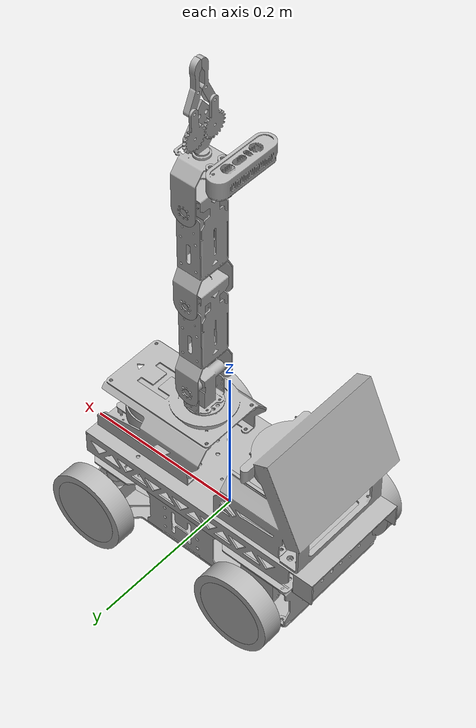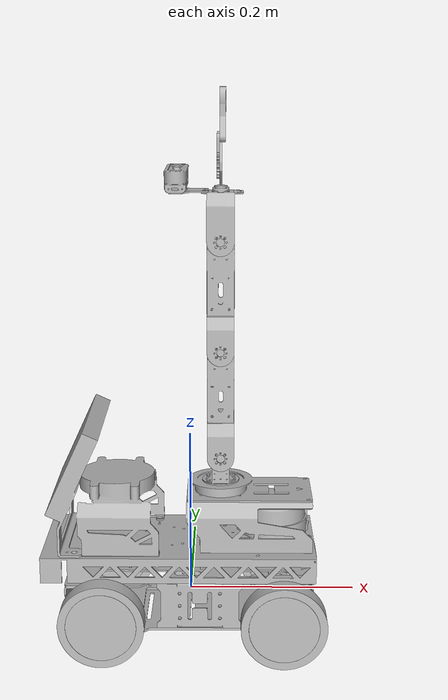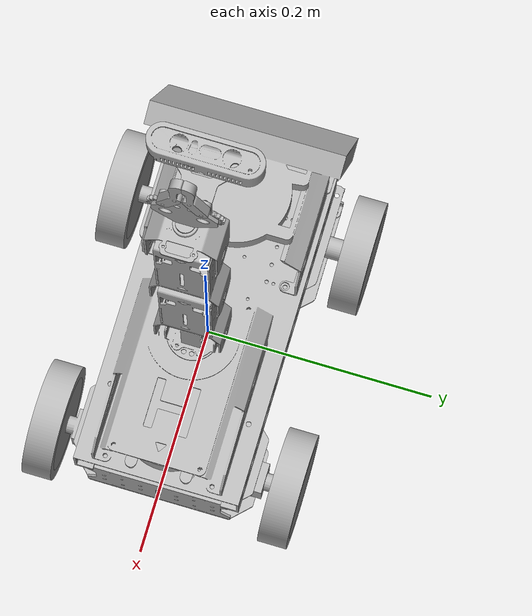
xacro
<?xml version="1.0"?>
<robot xmlns:xacro="http://www.ros.org/wiki/xacro" name="assembly_simulation">
    <xacro:arg name="initial_positions_file" default="initial_positions.yaml" />

    <!-- Import assembly_simulation urdf file -->
    <xacro:include filename="$(find jetrover_description)/urdf/assembly_simulation.xacro" />

    <!-- Import control_xacro -->
    <xacro:include filename="assembly_simulation.ros2_control.xacro" />

    <xacro:assembly_simulation_ros2_control name="FakeSystem" initial_positions_file="$(arg initial_positions_file)"/>

</robot>

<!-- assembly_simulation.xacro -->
<robot name="assembly_simulation" xmlns:xacro="http://www.ros.org/wiki/xacro">

  <xacro:include filename="$(find jetrover_description)/urdf/materials.xacro" />
  <xacro:include filename="$(find jetrover_description)/urdf/assembly_simulation.ros2control" />
  <xacro:include filename="$(find jetrover_description)/urdf/assembly_simulation.gazebo" />

  <link name="base_link">
    <inertial>
      <origin xyz="-0.0067982582159906695 0.0012157481048895304 -0.020578960201385596"
        rpy="0.0 0.0 0.0" />
      <mass value="0.4109600119604506" />
      <inertia ixx="0.0010913317770443174" iyy="0.0035379802831414023" izz="0.004549932585128713"
        ixy="4.787883371736895e-05" iyz="-1.0852253114523492e-05" ixz="0.00011255987326628367" />
    </inertial>
    <visual name="base_link_visual">
      <origin xyz="0.0 0.0 0.0" rpy="0.0 0.0 0.0" />
      <geometry>
        <mesh filename="file://$(find jetrover_description)/meshes/base_link.stl"
          scale="0.001 0.001 0.001" />
      </geometry>
      <material name="silver" />
    </visual>
    <collision name="base_link_collision">
      <origin xyz="0.0 0.0 0.0" rpy="0.0 0.0 0.0" />
      <geometry>
        <mesh filename="file://$(find jetrover_description)/meshes/base_link.stl"
          scale="0.001 0.001 0.001" />
      </geometry>
    </collision>
  </link>
  <link name="front_left_sterring_link">
    <inertial>
      <origin xyz="-0.004046761892184225 -0.006035026500165257 -0.019363389865389154"
        rpy="0.0 -0.0 0.0" />
      <mass value="0.07976552705950153" />
      <inertia ixx="1.8978782625800545e-05" iyy="2.183901609982791e-05" izz="2.5596290041883865e-05"
        ixy="3.5006816117792022e-06" iyz="-1.4605534916832075e-06" ixz="3.17939436578847e-06" />
    </inertial>
    <visual name="front_left_sterring_link_visual">
      <origin xyz="-0.11123217 0.06368303 -0.02126492445928225"
        rpy="3.141592653589793 -0.0 -4.61955986574744e-33" />
      <geometry>
        <mesh filename="file://$(find jetrover_description)/meshes/front_left_sterring_link.stl"
          scale="0.001 0.001 0.001" />
      </geometry>
      <material name="silver" />
    </visual>
    <collision name="front_left_sterring_link_collision">
      <origin xyz="-0.11123217 0.06368303 -0.02126492445928225"
        rpy="3.141592653589793 -0.0 -4.61955986574744e-33" />
      <geometry>
        <mesh filename="file://$(find jetrover_description)/meshes/front_left_sterring_link.stl"
          scale="0.001 0.001 0.001" />
      </geometry>
    </collision>
  </link>
  <link name="rear_right_wheel_link">
    <inertial>
      <origin xyz="-4.8838706945275594e-09 -4.295349098626389e-09 0.01280000084509128"
        rpy="0.0 -0.0 0.0" />
      <mass value="1.0742550415244152" />
      <inertia ixx="0.0005156466721912382" iyy="0.000515646672191266" izz="0.0009139560470469363"
        ixy="8.673617379884035e-19" iyz="0.0" ixz="0.0" />
    </inertial>
    <visual name="rear_right_wheel_link_visual">
      <origin xyz="-4.8838706945275594e-09 -4.295349107508173e-09 0.006800000845091283"
        rpy="-1.5707963267948966 1.9745049295806095e-49 0.0" />
      <geometry>
        <mesh filename="file://$(find jetrover_description)/meshes/rear_right_wheel_link.stl"
          scale="0.001 0.001 0.001" />
      </geometry>
      <material name="silver" />
    </visual>
    <collision name="rear_right_wheel_link_collision">
      <origin xyz="-4.8838706945275594e-09 -4.295349107508173e-09 0.006800000845091283"
        rpy="-1.5707963267948966 1.9745049295806095e-49 0.0" />
      <geometry>
        <mesh filename="file://$(find jetrover_description)/meshes/rear_right_wheel_link.stl"
          scale="0.001 0.001 0.001" />
      </geometry>
    </collision>
  </link>
  <link name="rear_right_wheel_tire">
    <inertial>
      <origin xyz="-4.8838706945275594e-09 -4.295349116389957e-09 -0.012799999154908726"
        rpy="0.0 -0.0 0.0" />
      <mass value="0.06316889720600809" />
      <inertia ixx="7.066062313314226e-05" iyy="7.066062313314616e-05" izz="0.00013442151818746702"
        ixy="5.421010862427522e-20" iyz="-5.421010862427522e-20" ixz="0.0" />
    </inertial>
    <visual name="rear_right_wheel_tire_visual">
      <origin xyz="-4.8838706945275594e-09 -4.295349107508173e-09 -0.018799999154908723"
        rpy="-1.5707963267948966 1.9745049295806095e-49 0.0" />
      <geometry>
        <mesh filename="file://$(find jetrover_description)/meshes/rear_right_wheel_tire.stl"
          scale="0.001 0.001 0.001" />
      </geometry>
      <material name="silver" />
    </visual>
    <collision name="rear_right_wheel_tire_collision">
      <origin xyz="-4.8838706945275594e-09 -4.295349107508173e-09 -0.018799999154908723"
        rpy="-1.5707963267948966 1.9745049295806095e-49 0.0" />
      <geometry>
        <mesh filename="file://$(find jetrover_description)/meshes/rear_right_wheel_tire.stl"
          scale="0.001 0.001 0.001" />
      </geometry>
    </collision>
  </link>
  <link name="back_shell_green_link">
    <inertial>
      <origin xyz="-0.10672400926251399 0.06191583961052936 -0.047361790831857854"
        rpy="0.0 -0.0 0.0" />
      <mass value="1.490908993099616" />
      <inertia ixx="0.004670014598120796" iyy="0.01266510603378274" izz="0.014386663467940293"
        ixy="1.2607305340495994e-05" iyz="-4.945158285442334e-06" ixz="0.0010742484529362006" />
    </inertial>
    <visual name="back_shell_green_link_visual">
      <origin xyz="-0.1253717600000026 0.06196329000000034 -0.05344999394079745"
        rpy="-3.141592653589793 4.7331654313260666e-30 0.0" />
      <geometry>
        <mesh filename="file://$(find jetrover_description)/meshes/back_shell_green_link.stl"
          scale="0.001 0.001 0.001" />
      </geometry>
      <material name="silver" />
    </visual>
    <collision name="back_shell_green_link_collision">
      <origin xyz="-0.1253717600000026 0.06196329000000034 -0.05344999394079745"
        rpy="-3.141592653589793 4.7331654313260666e-30 0.0" />
      <geometry>
        <mesh filename="file://$(find jetrover_description)/meshes/back_shell_green_link.stl"
          scale="0.001 0.001 0.001" />
      </geometry>
    </collision>
  </link>
  <link name="back_shell_black_link">
    <inertial>
      <origin xyz="-0.0819780467070293 0.05624562178099485 -0.09124490475010961" rpy="0.0 -0.0 0.0" />
      <mass value="3.8090355932386615" />
      <inertia ixx="0.01179823416161202" iyy="0.006975042260155606" izz="0.010452768070647774"
        ixy="2.6486934062127914e-05" iyz="2.4512846847634252e-05" ixz="-8.487707382538734e-05" />
    </inertial>
    <visual name="back_shell_black_link_visual">
      <origin xyz="-0.05859865489088415 0.0563208999999996 -0.07799512270781968"
        rpy="3.141592653589791 -3.2751579226442e-15 3.4421053255609813e-60" />
      <geometry>
        <mesh filename="file://$(find jetrover_description)/meshes/back_shell_black_link.stl"
          scale="0.001 0.001 0.001" />
      </geometry>
      <material name="silver" />
    </visual>
    <collision name="back_shell_black_link_collision">
      <origin xyz="-0.05859865489088415 0.0563208999999996 -0.07799512270781968"
        rpy="3.141592653589791 -3.2751579226442e-15 3.4421053255609813e-60" />
      <geometry>
        <mesh filename="file://$(find jetrover_description)/meshes/back_shell_black_link.stl"
          scale="0.001 0.001 0.001" />
      </geometry>
    </collision>
  </link>
  <link name="front_right_steering_link">
    <inertial>
      <origin xyz="-0.0040585614493465275 0.006054798705959393 -0.01932205539974504"
        rpy="0.0 -0.0 0.0" />
      <mass value="0.07950209290283795" />
      <inertia ixx="1.8849670940109496e-05" iyy="2.1724102830567938e-05" izz="2.554017582735951e-05"
        ixy="-3.5096455449820088e-06" iyz="1.4834853424957792e-06" ixz="3.1526957765012193e-06" />
    </inertial>
    <visual name="front_right_steering_link_visual">
      <origin xyz="-0.11123217 -0.06368303 -0.02126492467044681"
        rpy="3.141592653589793 -0.0 -4.61955986574744e-33" />
      <geometry>
        <mesh filename="file://$(find jetrover_description)/meshes/front_right_steering_link.stl"
          scale="0.001 0.001 0.001" />
      </geometry>
      <material name="silver" />
    </visual>
    <collision name="front_right_steering_link_collision">
      <origin xyz="-0.11123217 -0.06368303 -0.02126492467044681"
        rpy="3.141592653589793 -0.0 -4.61955986574744e-33" />
      <geometry>
        <mesh filename="file://$(find jetrover_description)/meshes/front_right_steering_link.stl"
          scale="0.001 0.001 0.001" />
      </geometry>
    </collision>
  </link>
  <link name="rear_left_wheel_tire">
    <inertial>
      <origin xyz="-4.8838706945275594e-09 4.295349116389957e-09 -0.012800000617187503"
        rpy="0.0 -0.0 0.0" />
      <mass value="0.06316889720600809" />
      <inertia ixx="7.066062313314237e-05" iyy="7.066062313314616e-05" izz="0.00013442151818746702"
        ixy="-5.421010862427522e-20" iyz="0.0" ixz="1.0842021724855044e-19" />
    </inertial>
    <visual name="rear_left_wheel_tire_visual">
      <origin xyz="-4.8838706945275594e-09 4.295349107508173e-09 -0.006800000617187507"
        rpy="1.5707963267948966 -1.9745049295806095e-49 0.0" />
      <geometry>
        <mesh filename="file://$(find jetrover_description)/meshes/rear_left_wheel_tire.stl"
          scale="0.001 0.001 0.001" />
      </geometry>
      <material name="silver" />
    </visual>
    <collision name="rear_left_wheel_tire_collision">
      <origin xyz="-4.8838706945275594e-09 4.295349107508173e-09 -0.006800000617187507"
        rpy="1.5707963267948966 -1.9745049295806095e-49 0.0" />
      <geometry>
        <mesh filename="file://$(find jetrover_description)/meshes/rear_left_wheel_tire.stl"
          scale="0.001 0.001 0.001" />
      </geometry>
    </collision>
  </link>
  <link name="rear_left_wheel_link">
    <inertial>
      <origin xyz="-4.8838706945275594e-09 4.295349098626389e-09 0.012799999382812502"
        rpy="0.0 -0.0 0.0" />
      <mass value="1.0742550415244152" />
      <inertia ixx="0.0005156466721912382" iyy="0.0005156466721912695" izz="0.0009139560470469363"
        ixy="-8.673617379884035e-19" iyz="-8.673617379884035e-19" ixz="1.734723475976807e-18" />
    </inertial>
    <visual name="rear_left_wheel_link_visual">
      <origin xyz="-4.8838706945275594e-09 4.295349107508173e-09 0.018799999382812498"
        rpy="1.5707963267948966 -1.9745049295806095e-49 0.0" />
      <geometry>
        <mesh filename="file://$(find jetrover_description)/meshes/rear_left_wheel_link.stl"
          scale="0.001 0.001 0.001" />
      </geometry>
      <material name="silver" />
    </visual>
    <collision name="rear_left_wheel_link_collision">
      <origin xyz="-4.8838706945275594e-09 4.295349107508173e-09 0.018799999382812498"
        rpy="1.5707963267948966 -1.9745049295806095e-49 0.0" />
      <geometry>
        <mesh filename="file://$(find jetrover_description)/meshes/rear_left_wheel_link.stl"
          scale="0.001 0.001 0.001" />
      </geometry>
    </collision>
  </link>
  <link name="front_right_wheel_link">
    <inertial>
      <origin xyz="-4.712778238769033e-09 -5.938493341517415e-10 -0.01279999700683593"
        rpy="0.0 -0.0 0.0" />
      <mass value="1.0742550415244152" />
      <inertia ixx="0.0005156466721912382" iyy="0.000515646672191266" izz="0.0009139560470469293"
        ixy="-8.673617379884035e-19" iyz="0.0" ixz="1.734723475976807e-18" />
    </inertial>
    <visual name="front_right_wheel_link_visual">
      <origin xyz="-4.712778238769033e-09 -5.938493252699573e-10 -0.006799997006835934"
        rpy="1.5707963267948966 -1.9745049295806095e-49 0.0" />
      <geometry>
        <mesh filename="file://$(find jetrover_description)/meshes/front_right_wheel_link.stl"
          scale="0.001 0.001 0.001" />
      </geometry>
      <material name="silver" />
    </visual>
    <collision name="front_right_wheel_link_collision">
      <origin xyz="-4.712778238769033e-09 -5.938493252699573e-10 -0.006799997006835934"
        rpy="1.5707963267948966 -1.9745049295806095e-49 0.0" />
      <geometry>
        <mesh filename="file://$(find jetrover_description)/meshes/front_right_wheel_link.stl"
          scale="0.001 0.001 0.001" />
      </geometry>
    </collision>
  </link>
  <link name="front_right_wheel_tire">
    <inertial>
      <origin xyz="-4.712778238769033e-09 5.938493163881731e-10 -0.012800002993164075"
        rpy="0.0 -0.0 0.0" />
      <mass value="0.06316889720600809" />
      <inertia ixx="7.066062313314248e-05" iyy="7.066062313314594e-05" izz="0.00013442151818746691"
        ixy="-5.421010862427522e-20" iyz="-5.421010862427522e-20" ixz="0.0" />
    </inertial>
    <visual name="front_right_wheel_tire_visual">
      <origin xyz="-4.712778238769033e-09 5.938493252699573e-10 -0.01880000299316407"
        rpy="-1.5707963267948966 1.9745049295806095e-49 0.0" />
      <geometry>
        <mesh filename="file://$(find jetrover_description)/meshes/front_right_wheel_tire.stl"
          scale="0.001 0.001 0.001" />
      </geometry>
      <material name="silver" />
    </visual>
    <collision name="front_right_wheel_tire_collision">
      <origin xyz="-4.712778238769033e-09 5.938493252699573e-10 -0.01880000299316407"
        rpy="-1.5707963267948966 1.9745049295806095e-49 0.0" />
      <geometry>
        <mesh filename="file://$(find jetrover_description)/meshes/front_right_wheel_tire.stl"
          scale="0.001 0.001 0.001" />
      </geometry>
    </collision>
  </link>
  <link name="front_left_wheel_link">
    <inertial>
      <origin xyz="4.712837835540995e-09 -3.82675686694256e-10 -0.01280000459027951"
        rpy="0.0 -5.519601233047983e-22 0.0" />
      <mass value="1.0742550415244152" />
      <inertia ixx="0.0005156466721912363" iyy="0.0005156466721912716" izz="0.0009139560470469344"
        ixy="-1.0647955665409556e-18" iyz="-1.2363407462638606e-18" ixz="-1.3347216463406814e-18" />
    </inertial>
    <visual name="front_left_wheel_link_visual">
      <origin xyz="4.712837835540995e-09 -3.826756778124718e-10 -0.018800004590279508"
        rpy="-1.5707963267948968 1.835030988038513e-17 3.141592653589793" />
      <geometry>
        <mesh filename="file://$(find jetrover_description)/meshes/front_left_wheel_link.stl"
          scale="0.001 0.001 0.001" />
      </geometry>
      <material name="silver" />
    </visual>
    <collision name="front_left_wheel_link_collision">
      <origin xyz="4.712837835540995e-09 -3.826756778124718e-10 -0.018800004590279508"
        rpy="-1.5707963267948968 1.835030988038513e-17 3.141592653589793" />
      <geometry>
        <mesh filename="file://$(find jetrover_description)/meshes/front_left_wheel_link.stl"
          scale="0.001 0.001 0.001" />
      </geometry>
    </collision>
  </link>
  <link name="front_left_wheel_tire">
    <inertial>
      <origin xyz="-1.6851433572995234e-07 -2.4264219860015145e-08 0.01279999541076414"
        rpy="0.0 -2.3509887017814206e-38 0.0" />
      <mass value="0.06316889720600809" />
      <inertia ixx="7.066062314389193e-05" iyy="7.06606231333962e-05" izz="0.0001344215181764672"
        ixy="1.6398015757757014e-15" iyz="-1.2629187929810715e-10" ixz="-8.278876132816057e-10" />
    </inertial>
    <visual name="front_left_wheel_tire_visual">
      <origin xyz="-9.060881579259217e-08 -1.2379956384478419e-08 0.0067999954112816854"
        rpy="-1.5707943460843192 -1.2984253322138014e-05 -2.571823159205028e-11" />
      <geometry>
        <mesh filename="file://$(find jetrover_description)/meshes/front_left_wheel_tire.stl"
          scale="0.001 0.001 0.001" />
      </geometry>
      <material name="silver" />
    </visual>
    <collision name="front_left_wheel_tire_collision">
      <origin xyz="-9.060881579259217e-08 -1.2379956384478419e-08 0.0067999954112816854"
        rpy="-1.5707943460843192 -1.2984253322138014e-05 -2.571823159205028e-11" />
      <geometry>
        <mesh filename="file://$(find jetrover_description)/meshes/front_left_wheel_tire.stl"
          scale="0.001 0.001 0.001" />
      </geometry>
    </collision>
  </link>
  <link name="base_green_link">
    <inertial>
      <origin xyz="-0.13913679 0.03661348 0.03123525" rpy="0.0 -0.0 0.0" />
      <mass value="0.0" />
      <inertia ixx="0.0" iyy="0.0" izz="0.0" ixy="0.0" iyz="0.0" ixz="0.0" />
    </inertial>
    <visual name="base_green_link_visual">
      <origin xyz="-0.13913679 0.03661348 -0.029485164161682134"
        rpy="3.141592653589793 -0.0 -4.61955986574744e-33" />
      <geometry>
        <mesh filename="file://$(find jetrover_description)/meshes/base_green_link.stl"
          scale="0.001 0.001 0.001" />
      </geometry>
      <material name="silver" />
    </visual>
    <collision name="base_green_link_collision">
      <origin xyz="-0.13913679 0.03661348 -0.029485164161682134"
        rpy="3.141592653589793 -0.0 -4.61955986574744e-33" />
      <geometry>
        <mesh filename="file://$(find jetrover_description)/meshes/base_green_link.stl"
          scale="0.001 0.001 0.001" />
      </geometry>
    </collision>
  </link>
  <link name="link3">
    <inertial>
      <origin xyz="-2.3639875297267743e-05 -0.09195621094779562 -0.026295032318387004"
        rpy="0.0 -2.381120518315739e-50 0.0" />
      <mass value="0.40322562518815125" />
      <inertia ixx="0.0008314440783270797" iyy="0.00012967945845206348" izz="0.0007839817865429054"
        ixy="-7.528083158836233e-07" iyz="1.3912748929935816e-06" ixz="-2.957961890971326e-08" />
    </inertial>
    <visual name="link3_visual">
      <origin xyz="3.2398554239421173e-09 -0.06549999618094575 -0.026499997605061783"
        rpy="-1.5707963267948963 -7.55716019276709e-16 3.141592653589793" />
      <geometry>
        <mesh filename="file://$(find jetrover_description)/meshes/link3.stl"
          scale="0.001 0.001 0.001" />
      </geometry>
      <material name="silver" />
    </visual>
    <collision name="link3_collision">
      <origin xyz="3.2398554239421173e-09 -0.06549999618094575 -0.026499997605061783"
        rpy="-1.5707963267948963 -7.55716019276709e-16 3.141592653589793" />
      <geometry>
        <mesh filename="file://$(find jetrover_description)/meshes/link3.stl"
          scale="0.001 0.001 0.001" />
      </geometry>
    </collision>
  </link>
  <link name="link4">
    <inertial>
      <origin xyz="6.226265562934152e-06 -0.030050540479459684 -0.026987061009714274"
        rpy="0.0 -8.077935669463161e-28 0.0" />
      <mass value="0.05455109870412938" />
      <inertia ixx="5.4661118393795456e-05" iyy="3.647132392529831e-05" izz="2.9559555983077807e-05"
        ixy="6.100322699600359e-10" iyz="-6.193289634840804e-09" ixz="2.8544193369428678e-08" />
    </inertial>
    <visual name="link4_visual">
      <origin xyz="-0.0019964344419719773 -0.019300002691426243 -0.027000259990480804"
        rpy="-1.5707963267948963 0.0001321162061067051 3.141592653589793" />
      <geometry>
        <mesh filename="file://$(find jetrover_description)/meshes/link4.stl"
          scale="0.001 0.001 0.001" />
      </geometry>
      <material name="silver" />
    </visual>
    <collision name="link4_collision">
      <origin xyz="-0.0019964344419719773 -0.019300002691426243 -0.027000259990480804"
        rpy="-1.5707963267948963 0.0001321162061067051 3.141592653589793" />
      <geometry>
        <mesh filename="file://$(find jetrover_description)/meshes/link4.stl"
          scale="0.001 0.001 0.001" />
      </geometry>
    </collision>
  </link>
  <link name="camera_connect_link">
    <inertial>
      <origin xyz="0.021254077529882173 0.00864995418185809 -0.0010000278787556027"
        rpy="0.0 -0.0 0.0" />
      <mass value="0.021271472322718216" />
      <inertia ixx="3.6076051163283298e-06" iyy="3.234970151034624e-06" izz="6.828393360724997e-06"
        ixy="-7.826366542289677e-10" iyz="-3.908533180159593e-11" ixz="5.315554453214836e-12" />
    </inertial>
    <visual name="camera_connect_link_visual">
      <origin xyz="0.017416935161538135 0.00865788278054115 -0.0009999882942112492"
        rpy="3.114781384409849 2.1107573498320268e-08 -1.5709284429941672" />
      <geometry>
        <mesh filename="file://$(find jetrover_description)/meshes/camera_connect_link.stl"
          scale="0.001 0.001 0.001" />
      </geometry>
      <material name="silver" />
    </visual>
    <collision name="camera_connect_link_collision">
      <origin xyz="0.017416935161538135 0.00865788278054115 -0.0009999882942112492"
        rpy="3.114781384409849 2.1107573498320268e-08 -1.5709284429941672" />
      <geometry>
        <mesh filename="file://$(find jetrover_description)/meshes/camera_connect_link.stl"
          scale="0.001 0.001 0.001" />
      </geometry>
    </collision>
  </link>
  <link name="depth_cam_link">
    <inertial>
      <origin xyz="-4.376453911592249e-05 0.022050164920116654 -0.013820516719357273"
        rpy="3.469446951953615e-18 -0.0 -5.169878828456424e-26" />
      <mass value="0.03831714695484083" />
      <inertia ixx="3.489400139092503e-05" iyy="5.559136251498198e-06" izz="3.4999940904367665e-05"
        ixy="9.329010221241009e-08" iyz="-8.334217485109708e-07" ixz="1.3472219553897635e-08" />
    </inertial>
    <visual name="depth_cam_link_visual">
      <origin xyz="-2.5096308837535554e-05 0.0225771511543509 -0.011943487721170954"
        rpy="1.6069858139525746 1.5439626212388962 1.6116093591706409" />
      <geometry>
        <mesh filename="file://$(find jetrover_description)/meshes/depth_cam_link.stl"
          scale="0.001 0.001 0.001" />
      </geometry>
      <material name="silver" />
    </visual>
    <collision name="depth_cam_link_collision">
      <origin xyz="-2.5096308837535554e-05 0.0225771511543509 -0.011943487721170954"
        rpy="1.6069858139525746 1.5439626212388962 1.6116093591706409" />
      <geometry>
        <mesh filename="file://$(find jetrover_description)/meshes/depth_cam_link.stl"
          scale="0.001 0.001 0.001" />
      </geometry>
    </collision>
  </link>
  <link name="virtual_depth_cam_frame" />
  <link name="gripper_link">
    <inertial>
      <origin xyz="-7.292827158971171e-06 -3.72577187692881e-06 -0.026762691036252874"
        rpy="0.0 -0.0 -2.5849394142282115e-26" />
      <mass value="0.014983159142790694" />
      <inertia ixx="5.321883738124411e-06" iyy="3.5090786940782544e-06" izz="1.8606875008082166e-06"
        ixy="-2.395017729012792e-10" iyz="-2.2969915770588434e-10" ixz="-9.425517672899144e-10" />
    </inertial>
    <visual name="gripper_link_visual">
      <origin xyz="-0.04450735545711261 2.1188053325294636e-06 -0.02698788504805073"
        rpy="-3.1414532306055833 -0.00027230615396783966 3.1414605714425767" />
      <geometry>
        <mesh filename="file://$(find jetrover_description)/meshes/gripper_link.stl"
          scale="0.001 0.001 0.001" />
      </geometry>
      <material name="silver" />
    </visual>
    <collision name="gripper_link_collision">
      <origin xyz="-0.04450735545711261 2.1188053325294636e-06 -0.02698788504805073"
        rpy="-3.1414532306055833 -0.00027230615396783966 3.1414605714425767" />
      <geometry>
        <mesh filename="file://$(find jetrover_description)/meshes/gripper_link.stl"
          scale="0.001 0.001 0.001" />
      </geometry>
    </collision>
  </link>
  <link name="l_link">
    <inertial>
      <origin xyz="0.005823212792751633 -4.647469240631308e-05 -0.001499843202122615"
        rpy="1.504632769052528e-36 -0.0 0.0" />
      <mass value="0.006441330922134834" />
      <inertia ixx="2.6206196713600564e-07" iyy="9.682273866065678e-07" izz="1.2206273470802276e-06"
        ixy="5.913680580898462e-09" iyz="-3.3168749286653685e-11" ixz="-2.6577135457672704e-11" />
    </inertial>
    <visual name="l_link_visual">
      <origin xyz="8.764590091914216e-08 3.913455760340412e-07 -0.003000003222326213"
        rpy="-0.00012976423428022498 3.770299105147709e-05 -3.0716398056752694" />
      <geometry>
        <mesh filename="file://$(find jetrover_description)/meshes/l_link.stl"
          scale="0.001 0.001 0.001" />
      </geometry>
      <material name="silver" />
    </visual>
    <collision name="l_link_collision">
      <origin xyz="8.764590091914216e-08 3.913455760340412e-07 -0.003000003222326213"
        rpy="-0.00012976423428022498 3.770299105147709e-05 -3.0716398056752694" />
      <geometry>
        <mesh filename="file://$(find jetrover_description)/meshes/l_link.stl"
          scale="0.001 0.001 0.001" />
      </geometry>
    </collision>
  </link>
  <link name="r_link">
    <inertial>
      <origin xyz="0.005823139361551881 5.51690625071144e-05 -0.0014998215915691838"
        rpy="1.504632769052528e-36 -0.0 0.0" />
      <mass value="0.006441330921646253" />
      <inertia ixx="2.6207067656026e-07" iyy="9.682186705418055e-07" izz="1.2206273402545244e-06"
        ixy="-6.412400061128394e-09" iyz="-3.35216969547447e-11" ixz="-2.8204940797195776e-11" />
    </inertial>
    <visual name="r_link_visual">
      <origin xyz="9.228587316556514e-10 4.58174483464191e-09 4.9388299050434624e-09"
        rpy="3.1414635671271527 3.9961946854847626e-05 -3.0541865132883514" />
      <geometry>
        <mesh filename="file://$(find jetrover_description)/meshes/r_link.stl"
          scale="0.001 0.001 0.001" />
      </geometry>
      <material name="silver" />
    </visual>
    <collision name="r_link_collision">
      <origin xyz="9.228587316556514e-10 4.58174483464191e-09 4.9388299050434624e-09"
        rpy="3.1414635671271527 3.9961946854847626e-05 -3.0541865132883514" />
      <geometry>
        <mesh filename="file://$(find jetrover_description)/meshes/r_link.stl"
          scale="0.001 0.001 0.001" />
      </geometry>
    </collision>
  </link>
  <link name="imu_link">
    <inertial>
      <origin xyz="-0.036636169725406245 0.027122084070784157 -0.0007999963989490055"
        rpy="0.0 -0.0 0.0" />
      <mass value="0.0706651825640878" />
      <inertia ixx="2.3187629058349932e-05" iyy="4.751926526366714e-05" izz="7.067674384547184e-05"
        ixy="-5.938154360427445e-08" iyz="2.710505431213761e-20" ixz="-5.421010862427522e-20" />
    </inertial>
    <visual name="imu_link_visual">
      <origin xyz="-0.03656776111523513 0.027084453098396015 -0.0007999963989490055"
        rpy="-2.5326962749260846e-16 4.544264624034629e-16 -1.5707963267948843" />
      <geometry>
        <mesh filename="file://$(find jetrover_description)/meshes/imu_link.stl"
          scale="0.001 0.001 0.001" />
      </geometry>
      <material name="silver" />
    </visual>
    <collision name="imu_link_collision">
      <origin xyz="-0.03656776111523513 0.027084453098396015 -0.0007999963989490055"
        rpy="-2.5326962749260846e-16 4.544264624034629e-16 -1.5707963267948843" />
      <geometry>
        <mesh filename="file://$(find jetrover_description)/meshes/imu_link.stl"
          scale="0.001 0.001 0.001" />
      </geometry>
    </collision>
  </link>
  <link name="lidar_frame" />
  <link name="lidar_link">
    <inertial>
      <origin xyz="-0.040099997002650094 -0.02389999910816517 -0.01766293669930608"
        rpy="0.0 -0.0 0.0" />
      <mass value="0.8125861247126507" />
      <inertia ixx="0.00035898806411377784" iyy="0.00038177105958932603" izz="0.0006814928196594051"
        ixy="-8.893845946170154e-19" iyz="1.6432439176733427e-19" ixz="1.6653345369377348e-16" />
    </inertial>
    <visual name="lidar_link_visual">
      <origin xyz="-0.04009999700263389 -0.02389999910816515 -0.010000003344751037"
        rpy="-3.1415926535897927 -1.1102230246251559e-16 -2.7369110631344077e-48" />
      <geometry>
        <mesh filename="file://$(find jetrover_description)/meshes/lidar_link.stl"
          scale="0.001 0.001 0.001" />
      </geometry>
      <material name="silver" />
    </visual>
    <collision name="lidar_link_collision">
      <origin xyz="-0.04009999700263389 -0.02389999910816515 -0.010000003344751037"
        rpy="-3.1415926535897927 -1.1102230246251559e-16 -2.7369110631344077e-48" />
      <geometry>
        <mesh filename="file://$(find jetrover_description)/meshes/lidar_link.stl"
          scale="0.001 0.001 0.001" />
      </geometry>
    </collision>
  </link>
  <link name="link1">
    <inertial>
      <origin xyz="8.321890154777467e-05 -0.0007320172734558542 -0.022810794280474944"
        rpy="0.0 -0.0 0.0" />
      <mass value="0.18032937433649726" />
      <inertia ixx="5.965266583352925e-05" iyy="4.234496045006815e-05" izz="3.096622958876017e-05"
        ixy="7.2629618775487065e-09" iyz="2.522285588627e-07" ixz="7.111865780312643e-09" />
    </inertial>
    <visual name="link1_visual">
      <origin xyz="7.021282600971013e-05 -3.850713768437158e-05 -0.022641119611074283"
        rpy="3.141592653589793 -3.9041590653403324e-17 -5.320466650806628e-33" />
      <geometry>
        <mesh filename="file://$(find jetrover_description)/meshes/link1.stl"
          scale="0.001 0.001 0.001" />
      </geometry>
      <material name="silver" />
    </visual>
    <collision name="link1_collision">
      <origin xyz="7.021282600971013e-05 -3.850713768437158e-05 -0.022641119611074283"
        rpy="3.141592653589793 -3.9041590653403324e-17 -5.320466650806628e-33" />
      <geometry>
        <mesh filename="file://$(find jetrover_description)/meshes/link1.stl"
          scale="0.001 0.001 0.001" />
      </geometry>
    </collision>
  </link>
  <link name="link2">
    <inertial>
      <origin xyz="-0.00010131372461316346 0.08877956537073715 -0.026288206092973963"
        rpy="0.0 -0.0 0.0" />
      <mass value="0.35796071594592527" />
      <inertia ixx="0.0007874263578522556" iyy="0.0001248008262161543" izz="0.0007382784115526481"
        ixy="-7.549106842428058e-07" iyz="-1.4946986434546222e-06" ixz="2.8628646994470616e-08" />
    </inertial>
    <visual name="link2_visual">
      <origin xyz="-0.00012452108424558351 0.06561107829964229 -0.02649999500246093"
        rpy="-1.5707963267948963 -7.556982329530722e-16 -3.903127820947816e-17" />
      <geometry>
        <mesh filename="file://$(find jetrover_description)/meshes/link2.stl"
          scale="0.001 0.001 0.001" />
      </geometry>
      <material name="silver" />
    </visual>
    <collision name="link2_collision">
      <origin xyz="-0.00012452108424558351 0.06561107829964229 -0.02649999500246093"
        rpy="-1.5707963267948963 -7.556982329530722e-16 -3.903127820947816e-17" />
      <geometry>
        <mesh filename="file://$(find jetrover_description)/meshes/link2.stl"
          scale="0.001 0.001 0.001" />
      </geometry>
    </collision>
  </link>
  <link name="link5">
    <inertial>
      <origin xyz="1.246814590412093e-06 -7.887616109085935e-06 -0.0035114952740888583"
        rpy="0.0 -0.0 0.0" />
      <mass value="0.0074151076754517525" />
      <inertia ixx="1.787715858268986e-07" iyy="1.7879311013701063e-07" izz="3.378599907002452e-07"
        ixy="3.0441760631608783e-12" iyz="-1.3322489447445252e-11" ixz="-3.1006013728740456e-12" />
    </inertial>
    <visual name="link5_visual">
      <origin xyz="7.445338544798119e-07 3.825594504253821e-07 -0.002749977620862865"
        rpy="-3.14145326279751 -0.0002723061152301914 -0.00013211620035717691" />
      <geometry>
        <mesh filename="file://$(find jetrover_description)/meshes/link5.stl"
          scale="0.001 0.001 0.001" />
      </geometry>
      <material name="silver" />
    </visual>
    <collision name="link5_collision">
      <origin xyz="7.445338544798119e-07 3.825594504253821e-07 -0.002749977620862865"
        rpy="-3.14145326279751 -0.0002723061152301914 -0.00013211620035717691" />
      <geometry>
        <mesh filename="file://$(find jetrover_description)/meshes/link5.stl"
          scale="0.001 0.001 0.001" />
      </geometry>
    </collision>
  </link>
  <link name="l_out_link">
    <inertial>
      <origin xyz="0.003501488340571193 0.006182083912995238 -0.023092103878510385"
        rpy="3.009265538105056e-36 7.523163845262642e-37 0.0" />
      <mass value="0.003128875366462588" />
      <inertia ixx="1.0218206049354864e-06" iyy="9.802591481250854e-07" izz="6.711394467914968e-08"
        ixy="-1.0238932038501571e-11" iyz="1.546995134577042e-07" ixz="4.887552154989559e-11" />
    </inertial>
    <visual name="l_out_link_visual">
      <origin xyz="0.0035014119805999713 0.005252460136414437 -0.025221049862246474"
        rpy="3.1242790432357177 -2.8540804092148847e-05 -0.00013208215069074423" />
      <geometry>
        <mesh filename="file://$(find jetrover_description)/meshes/l_out_link.stl"
          scale="0.001 0.001 0.001" />
      </geometry>
      <material name="silver" />
    </visual>
    <collision name="l_out_link_collision">
      <origin xyz="0.0035014119805999713 0.005252460136414437 -0.025221049862246474"
        rpy="3.1242790432357177 -2.8540804092148847e-05 -0.00013208215069074423" />
      <geometry>
        <mesh filename="file://$(find jetrover_description)/meshes/l_out_link.stl"
          scale="0.001 0.001 0.001" />
      </geometry>
    </collision>
  </link>
  <link name="r_out_link">
    <inertial>
      <origin xyz="0.0034997688420429986 0.006564887199378301 0.02293184038237442"
        rpy="1.504632769052528e-36 -0.0 0.0" />
      <mass value="0.0031234363328272266" />
      <inertia ixx="1.016818970120186e-06" iyy="9.699954105920304e-07" izz="7.233162364284652e-08"
        ixy="1.7106526203131604e-12" iyz="-1.6903448920665788e-07" ixz="-3.445094226171494e-12" />
    </inertial>
    <visual name="r_out_link_visual">
      <origin xyz="0.003499961904885307 0.005685735678468342 0.025127120542756034"
        rpy="-0.0001396821658643108 -2.8540804092148827e-05 -3.1414605714391026" />
      <geometry>
        <mesh filename="file://$(find jetrover_description)/meshes/r_out_link.stl"
          scale="0.001 0.001 0.001" />
      </geometry>
      <material name="silver" />
    </visual>
    <collision name="r_out_link_collision">
      <origin xyz="0.003499961904885307 0.005685735678468342 0.025127120542756034"
        rpy="-0.0001396821658643108 -2.8540804092148827e-05 -3.1414605714391026" />
      <geometry>
        <mesh filename="file://$(find jetrover_description)/meshes/r_out_link.stl"
          scale="0.001 0.001 0.001" />
      </geometry>
    </collision>
  </link>
  <joint name="Rigid4" type="fixed">
    <origin xyz="0.13913679 0.03661348 -0.022764750000000014"
      rpy="3.141592653589793 -0.0 -4.61955986574744e-33" />
    <parent link="base_link" />
    <child link="base_green_link" />
  </joint>
  <joint name="Rigid5" type="fixed">
    <origin xyz="-0.013765029999999996 -0.025349810000000007 -0.05897430000000001"
      rpy="0.0 -0.0 0.0" />
    <parent link="base_green_link" />
    <child link="back_shell_green_link" />
  </joint>
  <joint name="Rigid6" type="fixed">
    <origin xyz="-0.16637176 0.005642390000000006 -0.03144998999999998"
      rpy="7.006492321624085e-46 -0.0 0.0" />
    <parent link="back_shell_green_link" />
    <child link="back_shell_black_link" />
  </joint>
  <joint name="Rigid8" type="fixed">
    <origin xyz="2.396885072641908e-09 7.061907680849799e-10 -0.025600000002175653"
      rpy="-1.9807105773622926e-06 1.2984253322181836e-05 3.141592653589793" />
    <parent link="front_left_wheel_link" />
    <child link="front_left_wheel_tire" />
  </joint>
  <joint name="front_left_steering_joint" type="revolute">
    <origin xyz="0.11123217 0.06368303 -0.022764750000000014"
      rpy="3.141592653589793 -0.0 -4.61955986574744e-33" />
    <parent link="base_link" />
    <child link="front_left_sterring_link" />
    <axis xyz="0.0 0.0 -1.0" />
    <limit lower="-0.349066" upper="0.349066" effort="1000000" velocity="1000000" />
  </joint>
  <joint name="Rigid9" type="fixed">
    <origin xyz="0.0 0.0 -0.025600000000000005" rpy="3.141592653589793 -0.0 0.0" />
    <parent link="front_right_wheel_link" />
    <child link="front_right_wheel_tire" />
  </joint>
  <joint name="front_right_steering_joint" type="revolute">
    <origin xyz="0.11123217 -0.06368303 -0.022764750000000014"
      rpy="3.141592653589793 -0.0 -4.61955986574744e-33" />
    <parent link="base_link" />
    <child link="front_right_steering_link" />
    <axis xyz="0.0 0.0 -1.0" />
    <limit lower="-0.349066" upper="0.349066" effort="1000000" velocity="1000000" />
  </joint>
  <joint name="Rigid13" type="fixed">
    <origin xyz="0.0 0.0 0.025600000000000005" rpy="0.0 -0.0 0.0" />
    <parent link="rear_left_wheel_link" />
    <child link="rear_left_wheel_tire" />
  </joint>
  <joint name="rear_left_wheel_joint" type="continuous">
    <origin xyz="-0.10209827 0.0919244 0.00023524999999998463"
      rpy="-1.5707963267948966 -0.0 -4.61955986574744e-33" />
    <parent link="base_link" />
    <child link="rear_left_wheel_link" />
    <axis xyz="0.0 0.0 1.0" />
  </joint>
  <joint name="rear_right_wheel_joint" type="continuous">
    <origin xyz="-0.10209827 -0.09192406 0.00023524999999998463"
      rpy="1.5707963267948966 -0.0 -4.61955986574744e-33" />
    <parent link="base_link" />
    <child link="rear_right_wheel_link" />
    <axis xyz="0.0 0.0 -1.0" />
  </joint>
  <joint name="Rigid16" type="fixed">
    <origin xyz="0.0 0.0 0.025600000000000005" rpy="0.0 -0.0 0.0" />
    <parent link="rear_right_wheel_link" />
    <child link="rear_right_wheel_tire" />
  </joint>
  <joint name="front_right_wheel_joint" type="continuous">
    <origin xyz="-6.069000000000102e-05 0.02824103 -0.021359399999999997"
      rpy="1.5707963267948966 -0.0 0.0" />
    <parent link="front_right_steering_link" />
    <child link="front_right_wheel_link" />
    <axis xyz="0.0 0.0 1.0" />
  </joint>
  <joint name="front_left_wheel_joint" type="continuous">
    <origin xyz="-6.069000000000102e-05 -0.0282411 -0.021359399999999997"
      rpy="1.5707943460843194 2.5718047893657596e-11 -3.1415796693364713" />
    <parent link="front_left_sterring_link" />
    <child link="front_left_wheel_link" />
    <axis xyz="1.5746677061197616e-08 1.928942263507897e-08 -1.0000000000864997" />
  </joint>
  <joint name="joint1" type="revolute">
    <origin xyz="-0.08897041000000001 0.061963290000000004 -0.10539556000000001"
      rpy="7.006492321624085e-46 -0.0 0.0" />
    <parent link="back_shell_green_link" />
    <child link="link1" />
    <axis xyz="0.0 7.006492321624085e-46 1.0" />
    <limit lower="-2.090032" upper="2.090032" effort="1000000" velocity="1000000" />
  </joint>
  <joint name="joint3" type="revolute">
    <origin xyz="-0.0002457200000000004 0.12952583999999998 0.00011503000000000263"
      rpy="-1.342495051493883e-23 -0.00013211620610765516 -3.141592653589793" />
    <parent link="link2" />
    <child link="link3" />
    <axis xyz="1.1620687532352286e-07 -1.3424948992616156e-23 1.0000000087119931" />
    <limit lower="-2.090032" upper="2.090032" effort="1000000" velocity="1000000" />
  </joint>
  <joint name="joint4" type="revolute">
    <origin xyz="0.00011545587873893482 -0.12940727000000002 0.0004986347507591261"
      rpy="1.0018384518759942e-23 0.00013211621185730518 5.760220512052884e-35" />
    <parent link="link3" />
    <child link="link4" />
    <axis xyz="-0.00013200000574965006 -3.406564473856221e-24 0.9999999999999994" />
    <limit lower="-2.090032" upper="2.090032" effort="1000000" velocity="1000000" />
  </joint>
  <joint name="joint2" type="revolute">
    <origin xyz="1.9650000000002165e-05 0.026385839999999997 -0.03548012999999998"
      rpy="-1.5707963267948966 -2.3237962536515462e-94 -3.316632841342923e-49" />
    <parent link="link1" />
    <child link="link2" />
    <axis xyz="-3.316632841342923e-49 -1.4051584874249273e-30 1.0" />
    <limit lower="-2.090032" upper="2.090032" effort="1000000" velocity="1000000" />
  </joint>
  <joint name="camera_connect_joint" type="fixed">
    <origin xyz="0.018953300000105495 -0.05470626000000003 -0.01834907999989102"
      rpy="-1.5707964619915789 -2.308828687479906e-11 -0.0001282475013835615" />
    <parent link="link4" />
    <child link="camera_connect_link" />
  </joint>
  <joint name="depth_cam_joint" type="fixed">
    <origin xyz="0.031638136755741925 -0.01359822972905761 -0.0020000043429067205"
      rpy="-0.02681121027115455 -0.00012825930108338756 3.164400627824612e-10" />
    <parent link="camera_connect_link" />
    <child link="depth_cam_link" />
  </joint>
  <joint name="virtual_depth_cam_frame_joint" type="fixed">
    <parent link="depth_cam_link" />
    <child link="virtual_depth_cam_frame" />
    <origin xyz="0 0.022 -0.03" rpy="0 1.57079632679 0" />
  </joint>
  <joint name="joint5" type="revolute">
    <origin xyz="-0.00024036999984703656 -0.053884690000000006 -0.026603920000001377"
      rpy="1.5707963267948966 5.749650050772965e-12 3.141592653589793" />
    <parent link="link4" />
    <child link="link5" />
    <axis xyz="0.0 1.5706317504930268e-24 1.0" />
    <limit lower="-2.090032" upper="2.090032" effort="1000000" velocity="1000000" />
  </joint>
  <joint name="gripper_joint" type="fixed">
    <origin xyz="-4.999999999988347e-07 -1.950000000000007e-06 -0.005499549999999971"
      rpy="-2.913787123455721e-07 -0.00024376531351608322 -3.141592653518765" />
    <parent link="link5" />
    <child link="gripper_link" />
  </joint>
  <joint name="l_joint" type="continuous">
    <origin xyz="0.0014944878054658029 0.013996037867807162 -0.02700236102839945"
      rpy="-0.0011953241211403102 1.5705525613072344 3.1403973294331387" />
    <parent link="gripper_link" />
    <child link="l_link" />
    <axis xyz="-2.8999999999999997e-05 -0.00013199999999999998 1.0" />
  </joint>
  <joint name="r_joint" type="continuous">
    <origin xyz="0.0014907987567090153 -0.01400395213333094 -0.026998458287622144"
      rpy="-0.0011953241211403102 1.5705525613072344 3.1403973294331387" />
    <parent link="gripper_link" />
    <child link="r_link" />
    <axis xyz="-2.8999999999999997e-05 -0.00013199999999999998 1.0" />
  </joint>
  <joint name="imu_joint" type="fixed">
    <origin xyz="-0.07405545000000001 0.07403322 -0.029449989999999992"
      rpy="-3.141592653589793 -0.0 0.0" />
    <parent link="back_shell_green_link" />
    <child link="imu_link" />
  </joint>
  <joint name="lidar_base_joint" type="fixed">
    <origin xyz="0.01562823999999999 0.08596329000000001 -0.03144998999999998"
      rpy="7.006492321624085e-46 -0.0 0.0" />
    <parent link="back_shell_green_link" />
    <child link="lidar_link" />
  </joint>
  <joint name="lidar_frame_joint" type="fixed">
    <origin xyz="0 -0.0244 -0.065"
      rpy="0.0 0.0 0.0" />
    <parent link="lidar_link" />
    <child link="lidar_frame" />
  </joint>
  <joint name="l_gripper_joint" type="fixed">
    <origin xyz="0.029998859999999964 -0.0002617999999999987 8.199999999991548e-07"
      rpy="3.811648262644352e-21 -1.5707963267948966 0" />
    <parent link="l_link" />
    <child link="l_out_link" />
  </joint>
  <joint name="r_gripper_joint" type="fixed">
    <origin xyz="0.029998859999999964 0.0002617999999999987 9.000000000014552e-07"
      rpy="-3.141592653589793 -1.5707963267948966 0" />
    <parent link="r_link" />
    <child link="r_out_link" />
  </joint>
</robot>

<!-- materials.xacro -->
<robot name="assembly_simulation" xmlns:xacro="http://www.ros.org/wiki/xacro" >

<material name="silver">
  <color rgba="0.700 0.700 0.700 1.000"/>
</material>

</robot>

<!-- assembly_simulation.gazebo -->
<robot name="assembly_simulation" xmlns:xacro="http://www.ros.org/wiki/xacro">

  <xacro:property name="body_color" value="Gazebo/Silver" />

  <gazebo reference="base_link">
    <material>${body_color}</material>
    <mu1>0.2</mu1>
    <mu2>0.2</mu2>
    <self_collide>true</self_collide>
    <gravity>true</gravity>
  </gazebo>

  <gazebo reference="base_green_link_1">
    <material>${body_color}</material>
    <mu1>0.2</mu1>
    <mu2>0.2</mu2>
    <self_collide>true</self_collide>
  </gazebo>

  <gazebo reference="back_shell_green_link_1">
    <material>${body_color}</material>
    <mu1>0.2</mu1>
    <mu2>0.2</mu2>
    <self_collide>true</self_collide>
  </gazebo>

  <gazebo reference="back_shell_black_link_1">
    <material>${body_color}</material>
    <mu1>0.2</mu1>
    <mu2>0.2</mu2>
    <self_collide>true</self_collide>
  </gazebo>

  <gazebo reference="front_left_wheel_tire_1">
    <material>${body_color}</material>
    <mu1>1.5</mu1>
    <mu2>1.5</mu2>
    <self_collide>false</self_collide>
  </gazebo>

  <gazebo reference="front_left_sterring_link_1">
    <material>${body_color}</material>
    <mu1>0.2</mu1>
    <mu2>0.2</mu2>
    <self_collide>true</self_collide>
  </gazebo>

  <gazebo reference="front_right_wheel_tire_1">
    <material>${body_color}</material>
    <mu1>1.5</mu1>
    <mu2>1.5</mu2>
    <self_collide>false</self_collide>
  </gazebo>

  <gazebo reference="front_right_steering_link_1">
    <material>${body_color}</material>
    <mu1>0.2</mu1>
    <mu2>0.2</mu2>
    <self_collide>true</self_collide>
  </gazebo>

  <gazebo reference="rear_left_wheel_tire_1">
    <material>${body_color}</material>
    <mu1>1.5</mu1>
    <mu2>1.5</mu2>
    <self_collide>false</self_collide>
  </gazebo>

  <gazebo reference="rear_left_wheel_link_1">
    <material>${body_color}</material>
    <mu1>0.2</mu1>
    <mu2>0.2</mu2>
    <self_collide>true</self_collide>
  </gazebo>

  <gazebo reference="rear_right_wheel_link_1">
    <material>${body_color}</material>
    <mu1>0.2</mu1>
    <mu2>0.2</mu2>
    <self_collide>true</self_collide>
  </gazebo>

  <gazebo reference="rear_right_wheel_tire_1">
    <material>${body_color}</material>
    <mu1>1.5</mu1>
    <mu2>1.5</mu2>
    <self_collide>false</self_collide>
  </gazebo>

  <gazebo reference="front_right_wheel_link_1">
    <material>${body_color}</material>
    <mu1>0.2</mu1>
    <mu2>0.2</mu2>
    <self_collide>true</self_collide>
  </gazebo>

  <gazebo reference="link1_1">
    <material>${body_color}</material>
    <mu1>0.2</mu1>
    <mu2>0.2</mu2>
    <self_collide>true</self_collide>
  </gazebo>

  <gazebo reference="link3_1">
    <material>${body_color}</material>
    <mu1>0.2</mu1>
    <mu2>0.2</mu2>
    <self_collide>true</self_collide>
  </gazebo>

  <gazebo reference="link4_1">
    <material>${body_color}</material>
    <mu1>0.2</mu1>
    <mu2>0.2</mu2>
    <self_collide>true</self_collide>
  </gazebo>

  <gazebo reference="link2_1">
    <material>${body_color}</material>
    <mu1>0.2</mu1>
    <mu2>0.2</mu2>
    <self_collide>true</self_collide>
  </gazebo>

  <gazebo reference="camera_connect_link_1">
    <material>${body_color}</material>
    <mu1>0.2</mu1>
    <mu2>0.2</mu2>
    <self_collide>true</self_collide>
  </gazebo>

  <gazebo reference="depth_cam_link_1">
    <material>${body_color}</material>
    <mu1>0.2</mu1>
    <mu2>0.2</mu2>
    <self_collide>true</self_collide>
  </gazebo>

  <gazebo reference="link5_1">
    <material>${body_color}</material>
    <mu1>0.2</mu1>
    <mu2>0.2</mu2>
    <self_collide>true</self_collide>
  </gazebo>

  <gazebo reference="gripper_link_1">
    <material>${body_color}</material>
    <mu1>0.2</mu1>
    <mu2>0.2</mu2>
    <self_collide>true</self_collide>
  </gazebo>

  <gazebo reference="l_link_1">
    <material>${body_color}</material>
    <mu1>0.2</mu1>
    <mu2>0.2</mu2>
    <self_collide>true</self_collide>
  </gazebo>

  <gazebo reference="r_link_1">
    <material>${body_color}</material>
    <mu1>0.2</mu1>
    <mu2>0.2</mu2>
    <self_collide>true</self_collide>
  </gazebo>

  <gazebo reference="front_left_wheel_link_1">
    <material>${body_color}</material>
    <mu1>0.2</mu1>
    <mu2>0.2</mu2>
    <self_collide>true</self_collide>
  </gazebo>

  <gazebo reference="imu_link_1">
    <material>${body_color}</material>
    <mu1>0.2</mu1>
    <mu2>0.2</mu2>
    <self_collide>true</self_collide>
  </gazebo>

  <gazebo reference="lidar_link_1">
    <material>${body_color}</material>
    <mu1>0.2</mu1>
    <mu2>0.2</mu2>
    <self_collide>true</self_collide>
  </gazebo>

  <gazebo reference="l_out_link_1">
    <material>${body_color}</material>
    <mu1>0.2</mu1>
    <mu2>0.2</mu2>
    <self_collide>true</self_collide>
  </gazebo>

  <gazebo reference="r_out_link_1">
    <material>${body_color}</material>
    <mu1>0.2</mu1>
    <mu2>0.2</mu2>
    <self_collide>true</self_collide>
  </gazebo>

  <!-- Gazebo 传感器插件：负责相机/雷达等传感器的渲染、更新与数据发布 -->
  <gazebo>
    <plugin filename="gz-sim-sensors-system" name="gz::sim::systems::Sensors">
      <render_engine>ogre2</render_engine>
    </plugin>
  </gazebo>

  <!-- 深度相机 -->
  <gazebo reference="virtual_depth_cam_frame">
    <!-- 使用虚拟相机frame，避免sensor pose引起TF错误 -->
    <sensor name="camera" type="rgbd_camera">
      <camera>
        <horizontal_fov>1.5184</horizontal_fov>
        <image>
          <width>1024</width>
          <height>768</height>
        </image>
        <clip>
          <near>0.25</near>
          <far>2.5</far>
        </clip>
      </camera>
      <always_on>1</always_on>
      <gz_frame_id>virtual_depth_cam_frame</gz_frame_id>
      <topic>camera</topic>
      <update_rate>10</update_rate>
      <visualize>true</visualize>
    </sensor>
  </gazebo>

  <!-- LiDar -->
  <gazebo reference="lidar_frame">
    <sensor name='gpu_lidar' type='gpu_lidar'>
      <pose>0 0 0 0 0 0</pose>
      <topic>scan</topic>
      <gz_frame_id>lidar_link</gz_frame_id>
      <update_rate>10</update_rate>
      <lidar>
        <scan>
          <horizontal>
            <samples>800</samples>
            <resolution>1</resolution>
            <min_angle>-2.73144027937</min_angle>
            <max_angle>2.73144027937</max_angle>
          </horizontal>
          <vertical>
            <samples>1</samples>
            <resolution>1</resolution>
            <min_angle>0.0</min_angle>
            <max_angle>0.0</max_angle>
          </vertical>
        </scan>
        <range>
          <min>0.15</min>
          <max>12.0</max>
          <resolution>0.01</resolution>
        </range>
      </lidar>
      <visualize>true</visualize>
    </sensor>
  </gazebo>

</robot>
